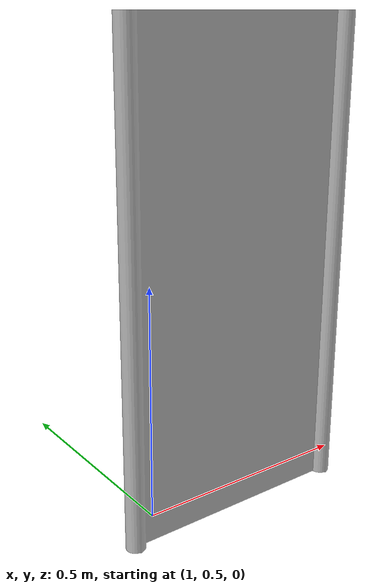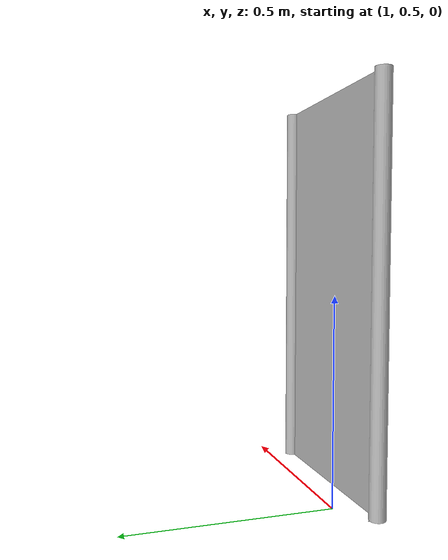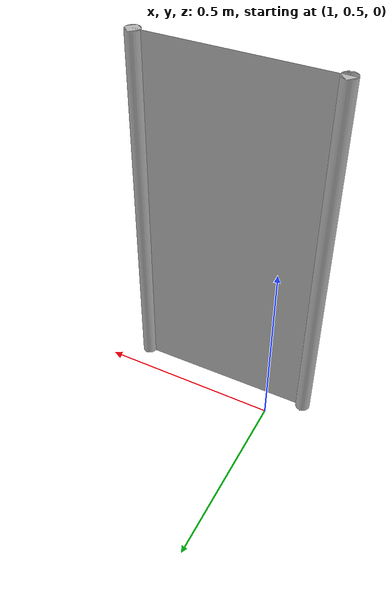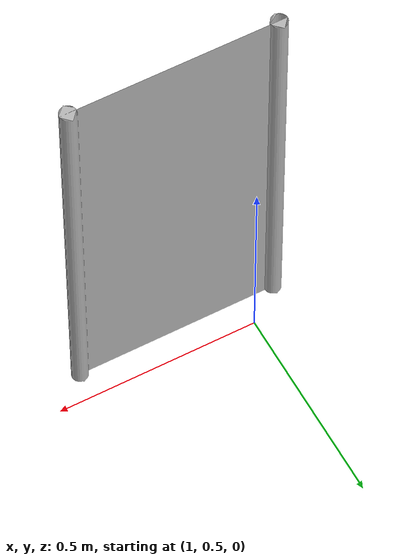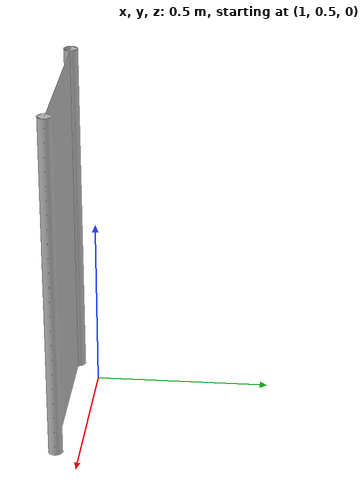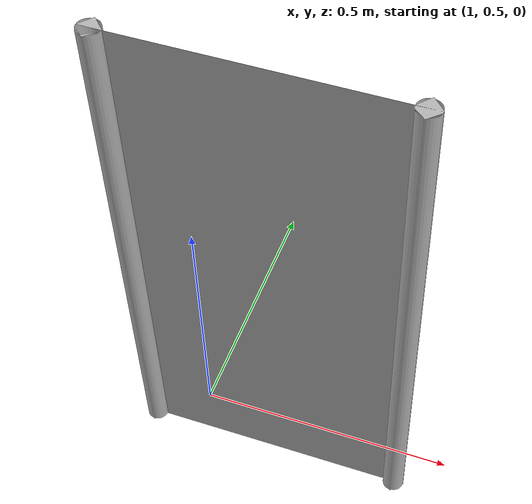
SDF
<?xml version="1.0"?>
<sdf version="1.4">
   <model name="fence_mini">
   <pose>0 0 0  0 0 0</pose>
   <static>true</static>
   <link name="body">
   <collision name="body">
     <geometry>
       <mesh>
          <uri>model://fence_mini/meshes/Tenax+1x_5.dae</uri>
       </mesh>
     </geometry>
   </collision>
   <visual name="visual">
     <geometry>
       <mesh><uri>model://fence_mini/meshes/Tenax+1x_5.dae</uri></mesh>
     </geometry>
   </visual>
   </link>
   </model>
</sdf>
